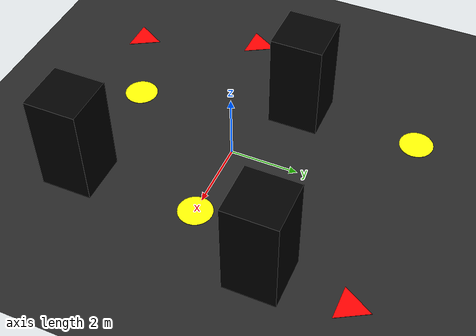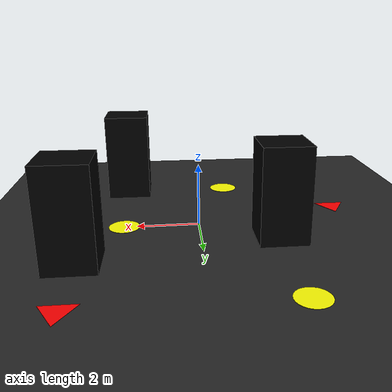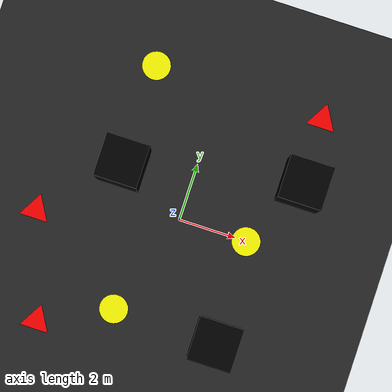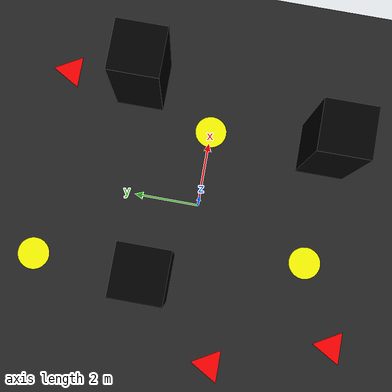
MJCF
<mujoco model="khojo_arena">

  <option gravity="0 0 -9.81" timestep="0.005" integrator="RK4"/>

  <visual>
    <!-- Headlight follows the active camera — at z=20 pointing down it acts as overhead sun -->
    <headlight ambient="0.7 0.7 0.7" diffuse="0.9 0.9 0.9" specular="0.1 0.1 0.1"/>
    <rgba haze="0.0 0.0 0.0 1"/>
    <global azimuth="120" elevation="-20" offwidth="1920" offheight="1920"/>

    <quality offsamples="0" shadowsize="0" numslices="14" numstacks="8" numquads="2"/>
  </visual>

  <asset>
    <!-- ── Skybox / floor ── -->
    <texture type="skybox" builtin="gradient" rgb1="0.4 0.6 0.8" rgb2="0 0 0"
             width="512" height="512"/>
    <material name="floor_mat" rgba="0.15 0.15 0.15 1" reflectance="0.0"/>

    <texture name="arena_tex" type="2d" file="meshes/textures/Khojo_Arena.png"/>
    <material name="arena_mat" texture="arena_tex" texuniform="true" texrepeat="0.11547 0.11547"
              rgba="1 1 1 1  " reflectance="0.0"/>

    <!-- Flat equilateral-triangle floor marker, side 1m. MuJoCo has no
         triangular-prism primitive, so this is a thin (0.01m) hand-built
         mesh instead (see meshes/triangle_marker.obj). -->
    <mesh name="triangle_marker" file="meshes/triangle_marker.obj"/>
  </asset>

  <worldbody>
    <light pos="0 0 10" dir="0 0 -1" directional="true" castshadow="false"
           diffuse="0.9 0.9 0.9" specular="0.1 0.1 0.1"/>
    <light pos="0 0 20" dir="0 0 -1" directional="true"
           diffuse="0.8 0.8 0.8" specular="0.0 0.0 0.0" castshadow="false"/>
    <geom name="floor" type="plane" size="20 20 0.1" material="floor_mat"
          contype="1" conaffinity="1"/>

    <geom name="arena_floor" type="plane" size="8.6603 8.6603 0.01" pos="0 0 0.001"
          material="arena_mat" contype="0" conaffinity="0"/>

    <!-- Black square prism obstacles: 1.5m x 1.5m footprint, 3m tall,
         base on the floor (pos.z = half-height = 1.5 so each sits at
         z=0..3, not floating). -->
    <geom name="obstacle_1" type="box" size="0.75 0.75 1.5" pos="-2.4068 1.2034 1.5"
          rgba="0 0 0 1" contype="1" conaffinity="1"/>

    <geom name="obstacle_2" type="box" size="0.75 0.75 1.5" pos="3.6102 2.4068 1.5"
          rgba="0 0 0 1" contype="1" conaffinity="1"/>

    <geom name="obstacle_3" type="box" size="0.75 0.75 1.5" pos="2.4068 -3.6102 1.5"
          rgba="0 0 0 1" contype="1" conaffinity="1"/>

    <geom name="obstacle_circle_1" type="cylinder" size="0.5 0.005" pos="-2.4068 4.8137 0.005"
          rgba="1 1 0 1" contype="0" conaffinity="0"/>
    <geom name="obstacle_circle_2" type="cylinder" size="0.5 0.005" pos="2.4068 0.0000 0.005"
          rgba="1 1 0 1" contype="0" conaffinity="0"/>
    <geom name="obstacle_circle_3" type="cylinder" size="0.5 0.005" pos="-1.2034 -3.6102 0.005"
          rgba="1 1 0 1" contype="0" conaffinity="0"/>

    <geom name="obstacle_triangle_1" type="mesh" mesh="triangle_marker" pos="3.6102 4.8137 0.005"
          rgba="1 0 0 1" contype="0" conaffinity="0"/>
    <geom name="obstacle_triangle_2" type="mesh" mesh="triangle_marker" pos="-4.8137 -1.2034 0.005"
          rgba="1 0 0 1" contype="0" conaffinity="0"/>
    <geom name="obstacle_triangle_3" type="mesh" mesh="triangle_marker" pos="-3.6102 -4.8137 0.005"
          rgba="1 0 0 1" contype="0" conaffinity="0"/>

    <camera name="top_cam" pos="0 0 15" xyaxes="1 0 0 0 1 0" fovy="60"/>
  </worldbody>
</mujoco>
